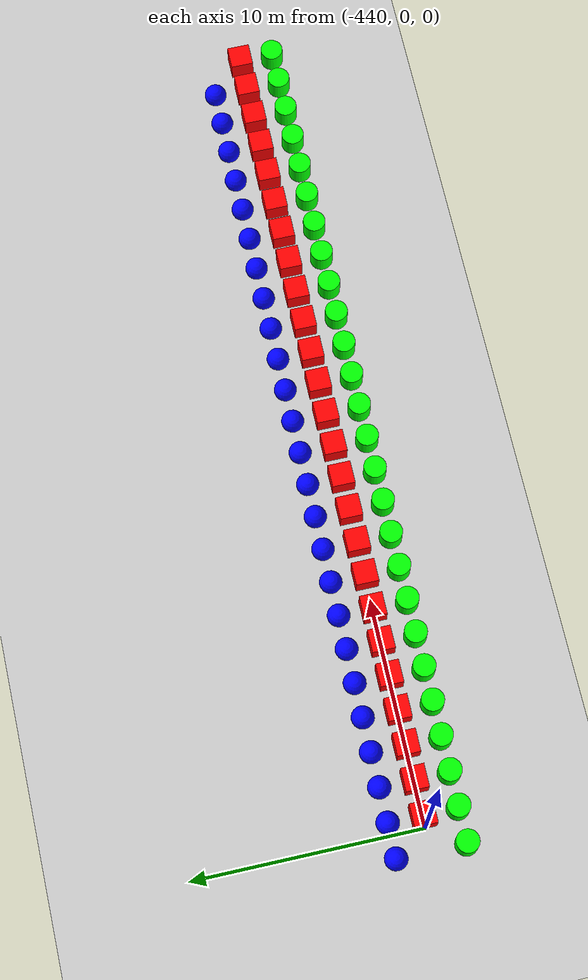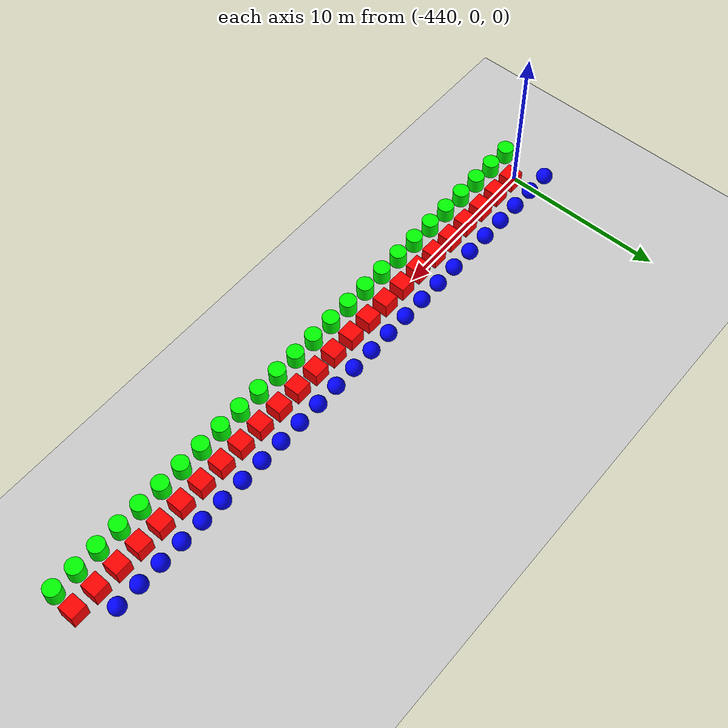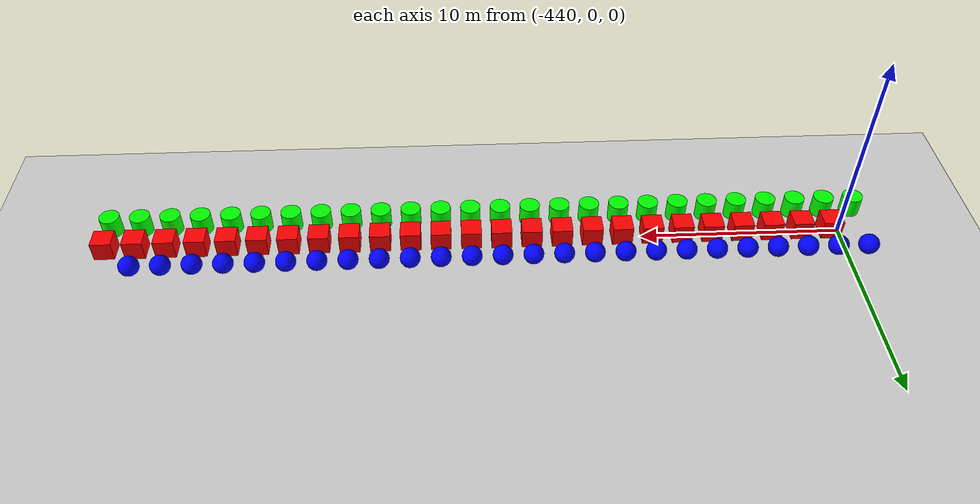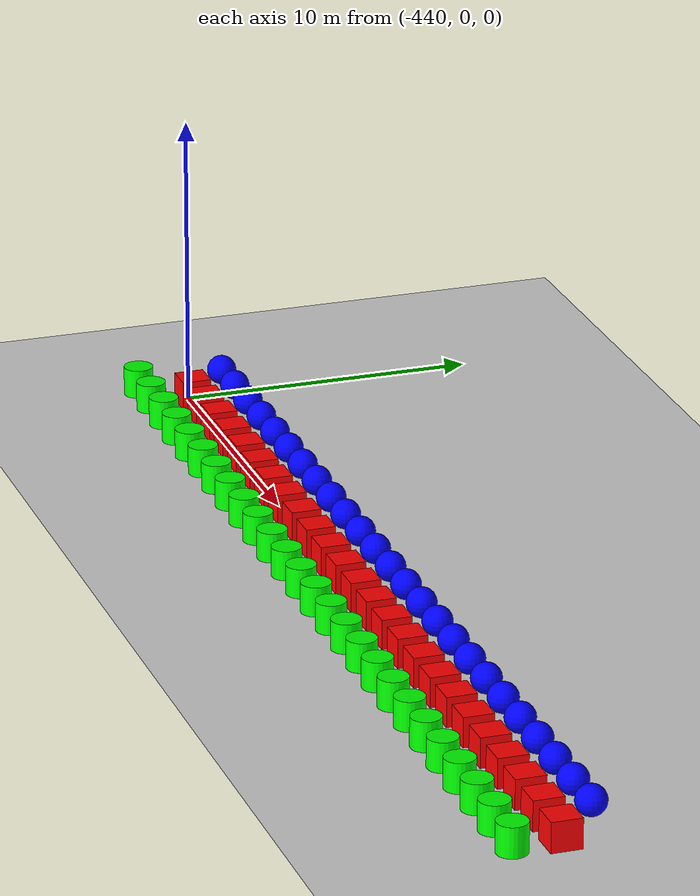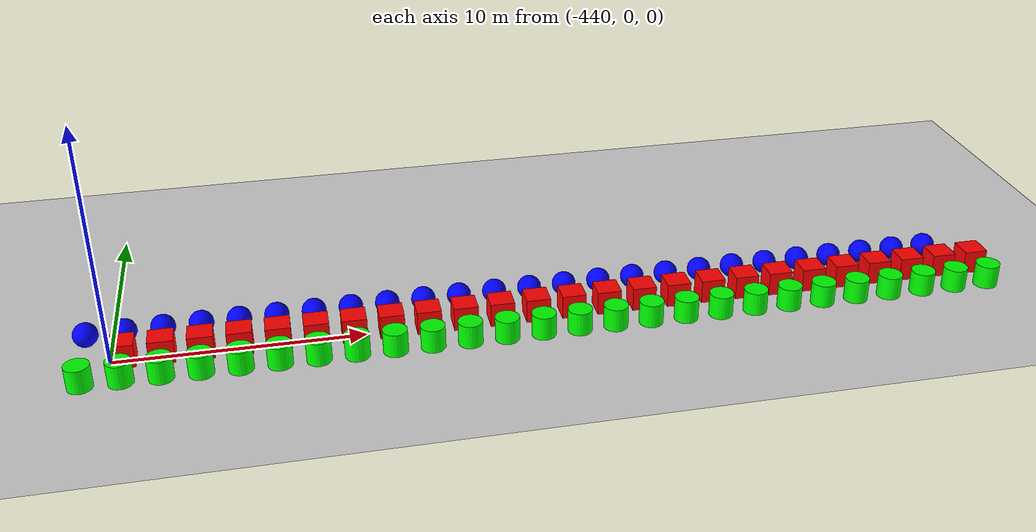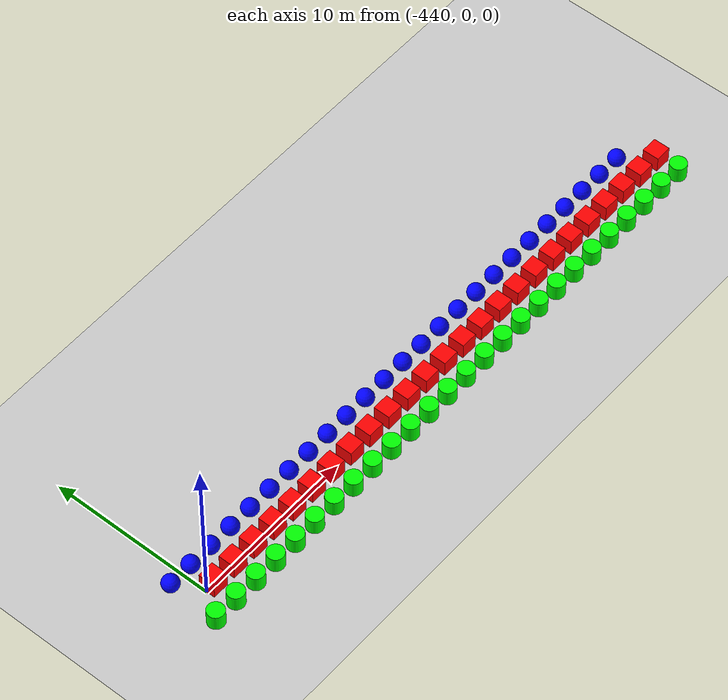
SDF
<sdf version="1.6">
 <world name="shapes">
  <model name="ground_plane">
   <static>true</static>
   <link name="link">
    <collision name="collision">
     <geometry><plane><normal>0 0 1</normal><size>100 100</size></plane></geometry>
    </collision>
    <visual name="visual">
     <geometry><plane><normal>0 0 1</normal><size>100 100</size></plane></geometry>
     <material>
      <ambient>0.8 0.8 0.8 1</ambient>
      <diffuse>0.8 0.8 0.8 1</diffuse>
      <specular>0.8 0.8 0.8 1</specular>
     </material>
    </visual>
   </link>
  </model>
  <model name="cylinder_206">
   <static>false</static>
   <pose>-441.0 -1.5 0.5 0 0 0</pose>
   <link name="cylinder_link">
    <inertial>
     <inertia><ixx>2</ixx><ixy>0</ixy><ixz>0</ixz><iyy>2</iyy><iyz>0</iyz><izz>2</izz></inertia>
     <mass>2.0</mass>
    </inertial>
    <collision name="cylinder_collision">
     <geometry><cylinder><radius>0.5</radius><length>1.0</length></cylinder></geometry>
    </collision>
    <visual name="cylinder_visual">
     <geometry><cylinder><radius>0.5</radius><length>1.0</length></cylinder></geometry>
     <material><ambient>0 1 0 1</ambient><diffuse>0 1 0 1</diffuse><specular>0 1 0 1</specular></material>
    </visual>
   </link>
  </model>
  <model name="sphere_206">
   <static>false</static>
   <pose>-441.0 1.5 0.5 0 0 0</pose>
   <link name="sphere_link">
    <inertial>
     <inertia><ixx>3</ixx><ixy>0</ixy><ixz>0</ixz><iyy>3</iyy><iyz>0</iyz><izz>3</izz></inertia>
     <mass>3.0</mass>
    </inertial>
    <collision name="sphere_collision"><geometry><sphere><radius>0.5</radius></sphere></geometry></collision>
    <visual name="sphere_visual">
     <geometry><sphere><radius>0.5</radius></sphere></geometry>
     <material><ambient>0 0 1 1</ambient><diffuse>0 0 1 1</diffuse><specular>0 0 1 1</specular></material>
    </visual>
   </link>
  </model>
  <model name="box_207">
   <static>false</static>
   <pose>-439.5 0 0.5 0 0 0</pose>
   <link name="box_link">
    <inertial>
     <inertia><ixx>1</ixx><ixy>0</ixy><ixz>0</ixz><iyy>1</iyy><iyz>0</iyz><izz>1</izz></inertia>
     <mass>1.0</mass>
    </inertial>
    <collision name="box_collision"><geometry><box><size>1 1 1</size></box></geometry></collision>
    <visual name="box_visual">
     <geometry><box><size>1 1 1</size></box></geometry>
     <material><ambient>1 0 0 1</ambient><diffuse>1 0 0 1</diffuse><specular>1 0 0 1</specular></material>
    </visual>
   </link>
  </model>
  <model name="cylinder_207">
   <static>false</static>
   <pose>-439.5 -1.5 0.5 0 0 0</pose>
   <link name="cylinder_link">
    <inertial>
     <inertia><ixx>2</ixx><ixy>0</ixy><ixz>0</ixz><iyy>2</iyy><iyz>0</iyz><izz>2</izz></inertia>
     <mass>2.0</mass>
    </inertial>
    <collision name="cylinder_collision">
     <geometry><cylinder><radius>0.5</radius><length>1.0</length></cylinder></geometry>
    </collision>
    <visual name="cylinder_visual">
     <geometry><cylinder><radius>0.5</radius><length>1.0</length></cylinder></geometry>
     <material><ambient>0 1 0 1</ambient><diffuse>0 1 0 1</diffuse><specular>0 1 0 1</specular></material>
    </visual>
   </link>
  </model>
  <model name="sphere_207">
   <static>false</static>
   <pose>-439.5 1.5 0.5 0 0 0</pose>
   <link name="sphere_link">
    <inertial>
     <inertia><ixx>3</ixx><ixy>0</ixy><ixz>0</ixz><iyy>3</iyy><iyz>0</iyz><izz>3</izz></inertia>
     <mass>3.0</mass>
    </inertial>
    <collision name="sphere_collision"><geometry><sphere><radius>0.5</radius></sphere></geometry></collision>
    <visual name="sphere_visual">
     <geometry><sphere><radius>0.5</radius></sphere></geometry>
     <material><ambient>0 0 1 1</ambient><diffuse>0 0 1 1</diffuse><specular>0 0 1 1</specular></material>
    </visual>
   </link>
  </model>
  <model name="box_208">
   <static>false</static>
   <pose>-438.0 0 0.5 0 0 0</pose>
   <link name="box_link">
    <inertial>
     <inertia><ixx>1</ixx><ixy>0</ixy><ixz>0</ixz><iyy>1</iyy><iyz>0</iyz><izz>1</izz></inertia>
     <mass>1.0</mass>
    </inertial>
    <collision name="box_collision"><geometry><box><size>1 1 1</size></box></geometry></collision>
    <visual name="box_visual">
     <geometry><box><size>1 1 1</size></box></geometry>
     <material><ambient>1 0 0 1</ambient><diffuse>1 0 0 1</diffuse><specular>1 0 0 1</specular></material>
    </visual>
   </link>
  </model>
  <model name="cylinder_208">
   <static>false</static>
   <pose>-438.0 -1.5 0.5 0 0 0</pose>
   <link name="cylinder_link">
    <inertial>
     <inertia><ixx>2</ixx><ixy>0</ixy><ixz>0</ixz><iyy>2</iyy><iyz>0</iyz><izz>2</izz></inertia>
     <mass>2.0</mass>
    </inertial>
    <collision name="cylinder_collision">
     <geometry><cylinder><radius>0.5</radius><length>1.0</length></cylinder></geometry>
    </collision>
    <visual name="cylinder_visual">
     <geometry><cylinder><radius>0.5</radius><length>1.0</length></cylinder></geometry>
     <material><ambient>0 1 0 1</ambient><diffuse>0 1 0 1</diffuse><specular>0 1 0 1</specular></material>
    </visual>
   </link>
  </model>
  <model name="sphere_208">
   <static>false</static>
   <pose>-438.0 1.5 0.5 0 0 0</pose>
   <link name="sphere_link">
    <inertial>
     <inertia><ixx>3</ixx><ixy>0</ixy><ixz>0</ixz><iyy>3</iyy><iyz>0</iyz><izz>3</izz></inertia>
     <mass>3.0</mass>
    </inertial>
    <collision name="sphere_collision"><geometry><sphere><radius>0.5</radius></sphere></geometry></collision>
    <visual name="sphere_visual">
     <geometry><sphere><radius>0.5</radius></sphere></geometry>
     <material><ambient>0 0 1 1</ambient><diffuse>0 0 1 1</diffuse><specular>0 0 1 1</specular></material>
    </visual>
   </link>
  </model>
  <model name="box_209">
   <static>false</static>
   <pose>-436.5 0 0.5 0 0 0</pose>
   <link name="box_link">
    <inertial>
     <inertia><ixx>1</ixx><ixy>0</ixy><ixz>0</ixz><iyy>1</iyy><iyz>0</iyz><izz>1</izz></inertia>
     <mass>1.0</mass>
    </inertial>
    <collision name="box_collision"><geometry><box><size>1 1 1</size></box></geometry></collision>
    <visual name="box_visual">
     <geometry><box><size>1 1 1</size></box></geometry>
     <material><ambient>1 0 0 1</ambient><diffuse>1 0 0 1</diffuse><specular>1 0 0 1</specular></material>
    </visual>
   </link>
  </model>
  <model name="cylinder_209">
   <static>false</static>
   <pose>-436.5 -1.5 0.5 0 0 0</pose>
   <link name="cylinder_link">
    <inertial>
     <inertia><ixx>2</ixx><ixy>0</ixy><ixz>0</ixz><iyy>2</iyy><iyz>0</iyz><izz>2</izz></inertia>
     <mass>2.0</mass>
    </inertial>
    <collision name="cylinder_collision">
     <geometry><cylinder><radius>0.5</radius><length>1.0</length></cylinder></geometry>
    </collision>
    <visual name="cylinder_visual">
     <geometry><cylinder><radius>0.5</radius><length>1.0</length></cylinder></geometry>
     <material><ambient>0 1 0 1</ambient><diffuse>0 1 0 1</diffuse><specular>0 1 0 1</specular></material>
    </visual>
   </link>
  </model>
  <model name="sphere_209">
   <static>false</static>
   <pose>-436.5 1.5 0.5 0 0 0</pose>
   <link name="sphere_link">
    <inertial>
     <inertia><ixx>3</ixx><ixy>0</ixy><ixz>0</ixz><iyy>3</iyy><iyz>0</iyz><izz>3</izz></inertia>
     <mass>3.0</mass>
    </inertial>
    <collision name="sphere_collision"><geometry><sphere><radius>0.5</radius></sphere></geometry></collision>
    <visual name="sphere_visual">
     <geometry><sphere><radius>0.5</radius></sphere></geometry>
     <material><ambient>0 0 1 1</ambient><diffuse>0 0 1 1</diffuse><specular>0 0 1 1</specular></material>
    </visual>
   </link>
  </model>
  <model name="box_210">
   <static>false</static>
   <pose>-435.0 0 0.5 0 0 0</pose>
   <link name="box_link">
    <inertial>
     <inertia><ixx>1</ixx><ixy>0</ixy><ixz>0</ixz><iyy>1</iyy><iyz>0</iyz><izz>1</izz></inertia>
     <mass>1.0</mass>
    </inertial>
    <collision name="box_collision"><geometry><box><size>1 1 1</size></box></geometry></collision>
    <visual name="box_visual">
     <geometry><box><size>1 1 1</size></box></geometry>
     <material><ambient>1 0 0 1</ambient><diffuse>1 0 0 1</diffuse><specular>1 0 0 1</specular></material>
    </visual>
   </link>
  </model>
  <model name="cylinder_210">
   <static>false</static>
   <pose>-435.0 -1.5 0.5 0 0 0</pose>
   <link name="cylinder_link">
    <inertial>
     <inertia><ixx>2</ixx><ixy>0</ixy><ixz>0</ixz><iyy>2</iyy><iyz>0</iyz><izz>2</izz></inertia>
     <mass>2.0</mass>
    </inertial>
    <collision name="cylinder_collision">
     <geometry><cylinder><radius>0.5</radius><length>1.0</length></cylinder></geometry>
    </collision>
    <visual name="cylinder_visual">
     <geometry><cylinder><radius>0.5</radius><length>1.0</length></cylinder></geometry>
     <material><ambient>0 1 0 1</ambient><diffuse>0 1 0 1</diffuse><specular>0 1 0 1</specular></material>
    </visual>
   </link>
  </model>
  <model name="sphere_210">
   <static>false</static>
   <pose>-435.0 1.5 0.5 0 0 0</pose>
   <link name="sphere_link">
    <inertial>
     <inertia><ixx>3</ixx><ixy>0</ixy><ixz>0</ixz><iyy>3</iyy><iyz>0</iyz><izz>3</izz></inertia>
     <mass>3.0</mass>
    </inertial>
    <collision name="sphere_collision"><geometry><sphere><radius>0.5</radius></sphere></geometry></collision>
    <visual name="sphere_visual">
     <geometry><sphere><radius>0.5</radius></sphere></geometry>
     <material><ambient>0 0 1 1</ambient><diffuse>0 0 1 1</diffuse><specular>0 0 1 1</specular></material>
    </visual>
   </link>
  </model>
  <model name="box_211">
   <static>false</static>
   <pose>-433.5 0 0.5 0 0 0</pose>
   <link name="box_link">
    <inertial>
     <inertia><ixx>1</ixx><ixy>0</ixy><ixz>0</ixz><iyy>1</iyy><iyz>0</iyz><izz>1</izz></inertia>
     <mass>1.0</mass>
    </inertial>
    <collision name="box_collision"><geometry><box><size>1 1 1</size></box></geometry></collision>
    <visual name="box_visual">
     <geometry><box><size>1 1 1</size></box></geometry>
     <material><ambient>1 0 0 1</ambient><diffuse>1 0 0 1</diffuse><specular>1 0 0 1</specular></material>
    </visual>
   </link>
  </model>
  <model name="cylinder_211">
   <static>false</static>
   <pose>-433.5 -1.5 0.5 0 0 0</pose>
   <link name="cylinder_link">
    <inertial>
     <inertia><ixx>2</ixx><ixy>0</ixy><ixz>0</ixz><iyy>2</iyy><iyz>0</iyz><izz>2</izz></inertia>
     <mass>2.0</mass>
    </inertial>
    <collision name="cylinder_collision">
     <geometry><cylinder><radius>0.5</radius><length>1.0</length></cylinder></geometry>
    </collision>
    <visual name="cylinder_visual">
     <geometry><cylinder><radius>0.5</radius><length>1.0</length></cylinder></geometry>
     <material><ambient>0 1 0 1</ambient><diffuse>0 1 0 1</diffuse><specular>0 1 0 1</specular></material>
    </visual>
   </link>
  </model>
  <model name="sphere_211">
   <static>false</static>
   <pose>-433.5 1.5 0.5 0 0 0</pose>
   <link name="sphere_link">
    <inertial>
     <inertia><ixx>3</ixx><ixy>0</ixy><ixz>0</ixz><iyy>3</iyy><iyz>0</iyz><izz>3</izz></inertia>
     <mass>3.0</mass>
    </inertial>
    <collision name="sphere_collision"><geometry><sphere><radius>0.5</radius></sphere></geometry></collision>
    <visual name="sphere_visual">
     <geometry><sphere><radius>0.5</radius></sphere></geometry>
     <material><ambient>0 0 1 1</ambient><diffuse>0 0 1 1</diffuse><specular>0 0 1 1</specular></material>
    </visual>
   </link>
  </model>
  <model name="box_212">
   <static>false</static>
   <pose>-432.0 0 0.5 0 0 0</pose>
   <link name="box_link">
    <inertial>
     <inertia><ixx>1</ixx><ixy>0</ixy><ixz>0</ixz><iyy>1</iyy><iyz>0</iyz><izz>1</izz></inertia>
     <mass>1.0</mass>
    </inertial>
    <collision name="box_collision"><geometry><box><size>1 1 1</size></box></geometry></collision>
    <visual name="box_visual">
     <geometry><box><size>1 1 1</size></box></geometry>
     <material><ambient>1 0 0 1</ambient><diffuse>1 0 0 1</diffuse><specular>1 0 0 1</specular></material>
    </visual>
   </link>
  </model>
  <model name="cylinder_212">
   <static>false</static>
   <pose>-432.0 -1.5 0.5 0 0 0</pose>
   <link name="cylinder_link">
    <inertial>
     <inertia><ixx>2</ixx><ixy>0</ixy><ixz>0</ixz><iyy>2</iyy><iyz>0</iyz><izz>2</izz></inertia>
     <mass>2.0</mass>
    </inertial>
    <collision name="cylinder_collision">
     <geometry><cylinder><radius>0.5</radius><length>1.0</length></cylinder></geometry>
    </collision>
    <visual name="cylinder_visual">
     <geometry><cylinder><radius>0.5</radius><length>1.0</length></cylinder></geometry>
     <material><ambient>0 1 0 1</ambient><diffuse>0 1 0 1</diffuse><specular>0 1 0 1</specular></material>
    </visual>
   </link>
  </model>
  <model name="sphere_212">
   <static>false</static>
   <pose>-432.0 1.5 0.5 0 0 0</pose>
   <link name="sphere_link">
    <inertial>
     <inertia><ixx>3</ixx><ixy>0</ixy><ixz>0</ixz><iyy>3</iyy><iyz>0</iyz><izz>3</izz></inertia>
     <mass>3.0</mass>
    </inertial>
    <collision name="sphere_collision"><geometry><sphere><radius>0.5</radius></sphere></geometry></collision>
    <visual name="sphere_visual">
     <geometry><sphere><radius>0.5</radius></sphere></geometry>
     <material><ambient>0 0 1 1</ambient><diffuse>0 0 1 1</diffuse><specular>0 0 1 1</specular></material>
    </visual>
   </link>
  </model>
  <model name="box_213">
   <static>false</static>
   <pose>-430.5 0 0.5 0 0 0</pose>
   <link name="box_link">
    <inertial>
     <inertia><ixx>1</ixx><ixy>0</ixy><ixz>0</ixz><iyy>1</iyy><iyz>0</iyz><izz>1</izz></inertia>
     <mass>1.0</mass>
    </inertial>
    <collision name="box_collision"><geometry><box><size>1 1 1</size></box></geometry></collision>
    <visual name="box_visual">
     <geometry><box><size>1 1 1</size></box></geometry>
     <material><ambient>1 0 0 1</ambient><diffuse>1 0 0 1</diffuse><specular>1 0 0 1</specular></material>
    </visual>
   </link>
  </model>
  <model name="cylinder_213">
   <static>false</static>
   <pose>-430.5 -1.5 0.5 0 0 0</pose>
   <link name="cylinder_link">
    <inertial>
     <inertia><ixx>2</ixx><ixy>0</ixy><ixz>0</ixz><iyy>2</iyy><iyz>0</iyz><izz>2</izz></inertia>
     <mass>2.0</mass>
    </inertial>
    <collision name="cylinder_collision">
     <geometry><cylinder><radius>0.5</radius><length>1.0</length></cylinder></geometry>
    </collision>
    <visual name="cylinder_visual">
     <geometry><cylinder><radius>0.5</radius><length>1.0</length></cylinder></geometry>
     <material><ambient>0 1 0 1</ambient><diffuse>0 1 0 1</diffuse><specular>0 1 0 1</specular></material>
    </visual>
   </link>
  </model>
  <model name="sphere_213">
   <static>false</static>
   <pose>-430.5 1.5 0.5 0 0 0</pose>
   <link name="sphere_link">
    <inertial>
     <inertia><ixx>3</ixx><ixy>0</ixy><ixz>0</ixz><iyy>3</iyy><iyz>0</iyz><izz>3</izz></inertia>
     <mass>3.0</mass>
    </inertial>
    <collision name="sphere_collision"><geometry><sphere><radius>0.5</radius></sphere></geometry></collision>
    <visual name="sphere_visual">
     <geometry><sphere><radius>0.5</radius></sphere></geometry>
     <material><ambient>0 0 1 1</ambient><diffuse>0 0 1 1</diffuse><specular>0 0 1 1</specular></material>
    </visual>
   </link>
  </model>
  <model name="box_214">
   <static>false</static>
   <pose>-429.0 0 0.5 0 0 0</pose>
   <link name="box_link">
    <inertial>
     <inertia><ixx>1</ixx><ixy>0</ixy><ixz>0</ixz><iyy>1</iyy><iyz>0</iyz><izz>1</izz></inertia>
     <mass>1.0</mass>
    </inertial>
    <collision name="box_collision"><geometry><box><size>1 1 1</size></box></geometry></collision>
    <visual name="box_visual">
     <geometry><box><size>1 1 1</size></box></geometry>
     <material><ambient>1 0 0 1</ambient><diffuse>1 0 0 1</diffuse><specular>1 0 0 1</specular></material>
    </visual>
   </link>
  </model>
  <model name="cylinder_214">
   <static>false</static>
   <pose>-429.0 -1.5 0.5 0 0 0</pose>
   <link name="cylinder_link">
    <inertial>
     <inertia><ixx>2</ixx><ixy>0</ixy><ixz>0</ixz><iyy>2</iyy><iyz>0</iyz><izz>2</izz></inertia>
     <mass>2.0</mass>
    </inertial>
    <collision name="cylinder_collision">
     <geometry><cylinder><radius>0.5</radius><length>1.0</length></cylinder></geometry>
    </collision>
    <visual name="cylinder_visual">
     <geometry><cylinder><radius>0.5</radius><length>1.0</length></cylinder></geometry>
     <material><ambient>0 1 0 1</ambient><diffuse>0 1 0 1</diffuse><specular>0 1 0 1</specular></material>
    </visual>
   </link>
  </model>
  <model name="sphere_214">
   <static>false</static>
   <pose>-429.0 1.5 0.5 0 0 0</pose>
   <link name="sphere_link">
    <inertial>
     <inertia><ixx>3</ixx><ixy>0</ixy><ixz>0</ixz><iyy>3</iyy><iyz>0</iyz><izz>3</izz></inertia>
     <mass>3.0</mass>
    </inertial>
    <collision name="sphere_collision"><geometry><sphere><radius>0.5</radius></sphere></geometry></collision>
    <visual name="sphere_visual">
     <geometry><sphere><radius>0.5</radius></sphere></geometry>
     <material><ambient>0 0 1 1</ambient><diffuse>0 0 1 1</diffuse><specular>0 0 1 1</specular></material>
    </visual>
   </link>
  </model>
  <model name="box_215">
   <static>false</static>
   <pose>-427.5 0 0.5 0 0 0</pose>
   <link name="box_link">
    <inertial>
     <inertia><ixx>1</ixx><ixy>0</ixy><ixz>0</ixz><iyy>1</iyy><iyz>0</iyz><izz>1</izz></inertia>
     <mass>1.0</mass>
    </inertial>
    <collision name="box_collision"><geometry><box><size>1 1 1</size></box></geometry></collision>
    <visual name="box_visual">
     <geometry><box><size>1 1 1</size></box></geometry>
     <material><ambient>1 0 0 1</ambient><diffuse>1 0 0 1</diffuse><specular>1 0 0 1</specular></material>
    </visual>
   </link>
  </model>
  <model name="cylinder_215">
   <static>false</static>
   <pose>-427.5 -1.5 0.5 0 0 0</pose>
   <link name="cylinder_link">
    <inertial>
     <inertia><ixx>2</ixx><ixy>0</ixy><ixz>0</ixz><iyy>2</iyy><iyz>0</iyz><izz>2</izz></inertia>
     <mass>2.0</mass>
    </inertial>
    <collision name="cylinder_collision">
     <geometry><cylinder><radius>0.5</radius><length>1.0</length></cylinder></geometry>
    </collision>
    <visual name="cylinder_visual">
     <geometry><cylinder><radius>0.5</radius><length>1.0</length></cylinder></geometry>
     <material><ambient>0 1 0 1</ambient><diffuse>0 1 0 1</diffuse><specular>0 1 0 1</specular></material>
    </visual>
   </link>
  </model>
  <model name="sphere_215">
   <static>false</static>
   <pose>-427.5 1.5 0.5 0 0 0</pose>
   <link name="sphere_link">
    <inertial>
     <inertia><ixx>3</ixx><ixy>0</ixy><ixz>0</ixz><iyy>3</iyy><iyz>0</iyz><izz>3</izz></inertia>
     <mass>3.0</mass>
    </inertial>
    <collision name="sphere_collision"><geometry><sphere><radius>0.5</radius></sphere></geometry></collision>
    <visual name="sphere_visual">
     <geometry><sphere><radius>0.5</radius></sphere></geometry>
     <material><ambient>0 0 1 1</ambient><diffuse>0 0 1 1</diffuse><specular>0 0 1 1</specular></material>
    </visual>
   </link>
  </model>
  <model name="box_216">
   <static>false</static>
   <pose>-426.0 0 0.5 0 0 0</pose>
   <link name="box_link">
    <inertial>
     <inertia><ixx>1</ixx><ixy>0</ixy><ixz>0</ixz><iyy>1</iyy><iyz>0</iyz><izz>1</izz></inertia>
     <mass>1.0</mass>
    </inertial>
    <collision name="box_collision"><geometry><box><size>1 1 1</size></box></geometry></collision>
    <visual name="box_visual">
     <geometry><box><size>1 1 1</size></box></geometry>
     <material><ambient>1 0 0 1</ambient><diffuse>1 0 0 1</diffuse><specular>1 0 0 1</specular></material>
    </visual>
   </link>
  </model>
  <model name="cylinder_216">
   <static>false</static>
   <pose>-426.0 -1.5 0.5 0 0 0</pose>
   <link name="cylinder_link">
    <inertial>
     <inertia><ixx>2</ixx><ixy>0</ixy><ixz>0</ixz><iyy>2</iyy><iyz>0</iyz><izz>2</izz></inertia>
     <mass>2.0</mass>
    </inertial>
    <collision name="cylinder_collision">
     <geometry><cylinder><radius>0.5</radius><length>1.0</length></cylinder></geometry>
    </collision>
    <visual name="cylinder_visual">
     <geometry><cylinder><radius>0.5</radius><length>1.0</length></cylinder></geometry>
     <material><ambient>0 1 0 1</ambient><diffuse>0 1 0 1</diffuse><specular>0 1 0 1</specular></material>
    </visual>
   </link>
  </model>
  <model name="sphere_216">
   <static>false</static>
   <pose>-426.0 1.5 0.5 0 0 0</pose>
   <link name="sphere_link">
    <inertial>
     <inertia><ixx>3</ixx><ixy>0</ixy><ixz>0</ixz><iyy>3</iyy><iyz>0</iyz><izz>3</izz></inertia>
     <mass>3.0</mass>
    </inertial>
    <collision name="sphere_collision"><geometry><sphere><radius>0.5</radius></sphere></geometry></collision>
    <visual name="sphere_visual">
     <geometry><sphere><radius>0.5</radius></sphere></geometry>
     <material><ambient>0 0 1 1</ambient><diffuse>0 0 1 1</diffuse><specular>0 0 1 1</specular></material>
    </visual>
   </link>
  </model>
  <model name="box_217">
   <static>false</static>
   <pose>-424.5 0 0.5 0 0 0</pose>
   <link name="box_link">
    <inertial>
     <inertia><ixx>1</ixx><ixy>0</ixy><ixz>0</ixz><iyy>1</iyy><iyz>0</iyz><izz>1</izz></inertia>
     <mass>1.0</mass>
    </inertial>
    <collision name="box_collision"><geometry><box><size>1 1 1</size></box></geometry></collision>
    <visual name="box_visual">
     <geometry><box><size>1 1 1</size></box></geometry>
     <material><ambient>1 0 0 1</ambient><diffuse>1 0 0 1</diffuse><specular>1 0 0 1</specular></material>
    </visual>
   </link>
  </model>
  <model name="cylinder_217">
   <static>false</static>
   <pose>-424.5 -1.5 0.5 0 0 0</pose>
   <link name="cylinder_link">
    <inertial>
     <inertia><ixx>2</ixx><ixy>0</ixy><ixz>0</ixz><iyy>2</iyy><iyz>0</iyz><izz>2</izz></inertia>
     <mass>2.0</mass>
    </inertial>
    <collision name="cylinder_collision">
     <geometry><cylinder><radius>0.5</radius><length>1.0</length></cylinder></geometry>
    </collision>
    <visual name="cylinder_visual">
     <geometry><cylinder><radius>0.5</radius><length>1.0</length></cylinder></geometry>
     <material><ambient>0 1 0 1</ambient><diffuse>0 1 0 1</diffuse><specular>0 1 0 1</specular></material>
    </visual>
   </link>
  </model>
  <model name="sphere_217">
   <static>false</static>
   <pose>-424.5 1.5 0.5 0 0 0</pose>
   <link name="sphere_link">
    <inertial>
     <inertia><ixx>3</ixx><ixy>0</ixy><ixz>0</ixz><iyy>3</iyy><iyz>0</iyz><izz>3</izz></inertia>
     <mass>3.0</mass>
    </inertial>
    <collision name="sphere_collision"><geometry><sphere><radius>0.5</radius></sphere></geometry></collision>
    <visual name="sphere_visual">
     <geometry><sphere><radius>0.5</radius></sphere></geometry>
     <material><ambient>0 0 1 1</ambient><diffuse>0 0 1 1</diffuse><specular>0 0 1 1</specular></material>
    </visual>
   </link>
  </model>
  <model name="box_218">
   <static>false</static>
   <pose>-423.0 0 0.5 0 0 0</pose>
   <link name="box_link">
    <inertial>
     <inertia><ixx>1</ixx><ixy>0</ixy><ixz>0</ixz><iyy>1</iyy><iyz>0</iyz><izz>1</izz></inertia>
     <mass>1.0</mass>
    </inertial>
    <collision name="box_collision"><geometry><box><size>1 1 1</size></box></geometry></collision>
    <visual name="box_visual">
     <geometry><box><size>1 1 1</size></box></geometry>
     <material><ambient>1 0 0 1</ambient><diffuse>1 0 0 1</diffuse><specular>1 0 0 1</specular></material>
    </visual>
   </link>
  </model>
  <model name="cylinder_218">
   <static>false</static>
   <pose>-423.0 -1.5 0.5 0 0 0</pose>
   <link name="cylinder_link">
    <inertial>
     <inertia><ixx>2</ixx><ixy>0</ixy><ixz>0</ixz><iyy>2</iyy><iyz>0</iyz><izz>2</izz></inertia>
     <mass>2.0</mass>
    </inertial>
    <collision name="cylinder_collision">
     <geometry><cylinder><radius>0.5</radius><length>1.0</length></cylinder></geometry>
    </collision>
    <visual name="cylinder_visual">
     <geometry><cylinder><radius>0.5</radius><length>1.0</length></cylinder></geometry>
     <material><ambient>0 1 0 1</ambient><diffuse>0 1 0 1</diffuse><specular>0 1 0 1</specular></material>
    </visual>
   </link>
  </model>
  <model name="sphere_218">
   <static>false</static>
   <pose>-423.0 1.5 0.5 0 0 0</pose>
   <link name="sphere_link">
    <inertial>
     <inertia><ixx>3</ixx><ixy>0</ixy><ixz>0</ixz><iyy>3</iyy><iyz>0</iyz><izz>3</izz></inertia>
     <mass>3.0</mass>
    </inertial>
    <collision name="sphere_collision"><geometry><sphere><radius>0.5</radius></sphere></geometry></collision>
    <visual name="sphere_visual">
     <geometry><sphere><radius>0.5</radius></sphere></geometry>
     <material><ambient>0 0 1 1</ambient><diffuse>0 0 1 1</diffuse><specular>0 0 1 1</specular></material>
    </visual>
   </link>
  </model>
  <model name="box_219">
   <static>false</static>
   <pose>-421.5 0 0.5 0 0 0</pose>
   <link name="box_link">
    <inertial>
     <inertia><ixx>1</ixx><ixy>0</ixy><ixz>0</ixz><iyy>1</iyy><iyz>0</iyz><izz>1</izz></inertia>
     <mass>1.0</mass>
    </inertial>
    <collision name="box_collision"><geometry><box><size>1 1 1</size></box></geometry></collision>
    <visual name="box_visual">
     <geometry><box><size>1 1 1</size></box></geometry>
     <material><ambient>1 0 0 1</ambient><diffuse>1 0 0 1</diffuse><specular>1 0 0 1</specular></material>
    </visual>
   </link>
  </model>
  <model name="cylinder_219">
   <static>false</static>
   <pose>-421.5 -1.5 0.5 0 0 0</pose>
   <link name="cylinder_link">
    <inertial>
     <inertia><ixx>2</ixx><ixy>0</ixy><ixz>0</ixz><iyy>2</iyy><iyz>0</iyz><izz>2</izz></inertia>
     <mass>2.0</mass>
    </inertial>
    <collision name="cylinder_collision">
     <geometry><cylinder><radius>0.5</radius><length>1.0</length></cylinder></geometry>
    </collision>
    <visual name="cylinder_visual">
     <geometry><cylinder><radius>0.5</radius><length>1.0</length></cylinder></geometry>
     <material><ambient>0 1 0 1</ambient><diffuse>0 1 0 1</diffuse><specular>0 1 0 1</specular></material>
    </visual>
   </link>
  </model>
  <model name="sphere_219">
   <static>false</static>
   <pose>-421.5 1.5 0.5 0 0 0</pose>
   <link name="sphere_link">
    <inertial>
     <inertia><ixx>3</ixx><ixy>0</ixy><ixz>0</ixz><iyy>3</iyy><iyz>0</iyz><izz>3</izz></inertia>
     <mass>3.0</mass>
    </inertial>
    <collision name="sphere_collision"><geometry><sphere><radius>0.5</radius></sphere></geometry></collision>
    <visual name="sphere_visual">
     <geometry><sphere><radius>0.5</radius></sphere></geometry>
     <material><ambient>0 0 1 1</ambient><diffuse>0 0 1 1</diffuse><specular>0 0 1 1</specular></material>
    </visual>
   </link>
  </model>
  <model name="box_220">
   <static>false</static>
   <pose>-420.0 0 0.5 0 0 0</pose>
   <link name="box_link">
    <inertial>
     <inertia><ixx>1</ixx><ixy>0</ixy><ixz>0</ixz><iyy>1</iyy><iyz>0</iyz><izz>1</izz></inertia>
     <mass>1.0</mass>
    </inertial>
    <collision name="box_collision"><geometry><box><size>1 1 1</size></box></geometry></collision>
    <visual name="box_visual">
     <geometry><box><size>1 1 1</size></box></geometry>
     <material><ambient>1 0 0 1</ambient><diffuse>1 0 0 1</diffuse><specular>1 0 0 1</specular></material>
    </visual>
   </link>
  </model>
  <model name="cylinder_220">
   <static>false</static>
   <pose>-420.0 -1.5 0.5 0 0 0</pose>
   <link name="cylinder_link">
    <inertial>
     <inertia><ixx>2</ixx><ixy>0</ixy><ixz>0</ixz><iyy>2</iyy><iyz>0</iyz><izz>2</izz></inertia>
     <mass>2.0</mass>
    </inertial>
    <collision name="cylinder_collision">
     <geometry><cylinder><radius>0.5</radius><length>1.0</length></cylinder></geometry>
    </collision>
    <visual name="cylinder_visual">
     <geometry><cylinder><radius>0.5</radius><length>1.0</length></cylinder></geometry>
     <material><ambient>0 1 0 1</ambient><diffuse>0 1 0 1</diffuse><specular>0 1 0 1</specular></material>
    </visual>
   </link>
  </model>
  <model name="sphere_220">
   <static>false</static>
   <pose>-420.0 1.5 0.5 0 0 0</pose>
   <link name="sphere_link">
    <inertial>
     <inertia><ixx>3</ixx><ixy>0</ixy><ixz>0</ixz><iyy>3</iyy><iyz>0</iyz><izz>3</izz></inertia>
     <mass>3.0</mass>
    </inertial>
    <collision name="sphere_collision"><geometry><sphere><radius>0.5</radius></sphere></geometry></collision>
    <visual name="sphere_visual">
     <geometry><sphere><radius>0.5</radius></sphere></geometry>
     <material><ambient>0 0 1 1</ambient><diffuse>0 0 1 1</diffuse><specular>0 0 1 1</specular></material>
    </visual>
   </link>
  </model>
  <model name="box_221">
   <static>false</static>
   <pose>-418.5 0 0.5 0 0 0</pose>
   <link name="box_link">
    <inertial>
     <inertia><ixx>1</ixx><ixy>0</ixy><ixz>0</ixz><iyy>1</iyy><iyz>0</iyz><izz>1</izz></inertia>
     <mass>1.0</mass>
    </inertial>
    <collision name="box_collision"><geometry><box><size>1 1 1</size></box></geometry></collision>
    <visual name="box_visual">
     <geometry><box><size>1 1 1</size></box></geometry>
     <material><ambient>1 0 0 1</ambient><diffuse>1 0 0 1</diffuse><specular>1 0 0 1</specular></material>
    </visual>
   </link>
  </model>
  <model name="cylinder_221">
   <static>false</static>
   <pose>-418.5 -1.5 0.5 0 0 0</pose>
   <link name="cylinder_link">
    <inertial>
     <inertia><ixx>2</ixx><ixy>0</ixy><ixz>0</ixz><iyy>2</iyy><iyz>0</iyz><izz>2</izz></inertia>
     <mass>2.0</mass>
    </inertial>
    <collision name="cylinder_collision">
     <geometry><cylinder><radius>0.5</radius><length>1.0</length></cylinder></geometry>
    </collision>
    <visual name="cylinder_visual">
     <geometry><cylinder><radius>0.5</radius><length>1.0</length></cylinder></geometry>
     <material><ambient>0 1 0 1</ambient><diffuse>0 1 0 1</diffuse><specular>0 1 0 1</specular></material>
    </visual>
   </link>
  </model>
  <model name="sphere_221">
   <static>false</static>
   <pose>-418.5 1.5 0.5 0 0 0</pose>
   <link name="sphere_link">
    <inertial>
     <inertia><ixx>3</ixx><ixy>0</ixy><ixz>0</ixz><iyy>3</iyy><iyz>0</iyz><izz>3</izz></inertia>
     <mass>3.0</mass>
    </inertial>
    <collision name="sphere_collision"><geometry><sphere><radius>0.5</radius></sphere></geometry></collision>
    <visual name="sphere_visual">
     <geometry><sphere><radius>0.5</radius></sphere></geometry>
     <material><ambient>0 0 1 1</ambient><diffuse>0 0 1 1</diffuse><specular>0 0 1 1</specular></material>
    </visual>
   </link>
  </model>
  <model name="box_222">
   <static>false</static>
   <pose>-417.0 0 0.5 0 0 0</pose>
   <link name="box_link">
    <inertial>
     <inertia><ixx>1</ixx><ixy>0</ixy><ixz>0</ixz><iyy>1</iyy><iyz>0</iyz><izz>1</izz></inertia>
     <mass>1.0</mass>
    </inertial>
    <collision name="box_collision"><geometry><box><size>1 1 1</size></box></geometry></collision>
    <visual name="box_visual">
     <geometry><box><size>1 1 1</size></box></geometry>
     <material><ambient>1 0 0 1</ambient><diffuse>1 0 0 1</diffuse><specular>1 0 0 1</specular></material>
    </visual>
   </link>
  </model>
  <model name="cylinder_222">
   <static>false</static>
   <pose>-417.0 -1.5 0.5 0 0 0</pose>
   <link name="cylinder_link">
    <inertial>
     <inertia><ixx>2</ixx><ixy>0</ixy><ixz>0</ixz><iyy>2</iyy><iyz>0</iyz><izz>2</izz></inertia>
     <mass>2.0</mass>
    </inertial>
    <collision name="cylinder_collision">
     <geometry><cylinder><radius>0.5</radius><length>1.0</length></cylinder></geometry>
    </collision>
    <visual name="cylinder_visual">
     <geometry><cylinder><radius>0.5</radius><length>1.0</length></cylinder></geometry>
     <material><ambient>0 1 0 1</ambient><diffuse>0 1 0 1</diffuse><specular>0 1 0 1</specular></material>
    </visual>
   </link>
  </model>
  <model name="sphere_222">
   <static>false</static>
   <pose>-417.0 1.5 0.5 0 0 0</pose>
   <link name="sphere_link">
    <inertial>
     <inertia><ixx>3</ixx><ixy>0</ixy><ixz>0</ixz><iyy>3</iyy><iyz>0</iyz><izz>3</izz></inertia>
     <mass>3.0</mass>
    </inertial>
    <collision name="sphere_collision"><geometry><sphere><radius>0.5</radius></sphere></geometry></collision>
    <visual name="sphere_visual">
     <geometry><sphere><radius>0.5</radius></sphere></geometry>
     <material><ambient>0 0 1 1</ambient><diffuse>0 0 1 1</diffuse><specular>0 0 1 1</specular></material>
    </visual>
   </link>
  </model>
  <model name="box_223">
   <static>false</static>
   <pose>-415.5 0 0.5 0 0 0</pose>
   <link name="box_link">
    <inertial>
     <inertia><ixx>1</ixx><ixy>0</ixy><ixz>0</ixz><iyy>1</iyy><iyz>0</iyz><izz>1</izz></inertia>
     <mass>1.0</mass>
    </inertial>
    <collision name="box_collision"><geometry><box><size>1 1 1</size></box></geometry></collision>
    <visual name="box_visual">
     <geometry><box><size>1 1 1</size></box></geometry>
     <material><ambient>1 0 0 1</ambient><diffuse>1 0 0 1</diffuse><specular>1 0 0 1</specular></material>
    </visual>
   </link>
  </model>
  <model name="cylinder_223">
   <static>false</static>
   <pose>-415.5 -1.5 0.5 0 0 0</pose>
   <link name="cylinder_link">
    <inertial>
     <inertia><ixx>2</ixx><ixy>0</ixy><ixz>0</ixz><iyy>2</iyy><iyz>0</iyz><izz>2</izz></inertia>
     <mass>2.0</mass>
    </inertial>
    <collision name="cylinder_collision">
     <geometry><cylinder><radius>0.5</radius><length>1.0</length></cylinder></geometry>
    </collision>
    <visual name="cylinder_visual">
     <geometry><cylinder><radius>0.5</radius><length>1.0</length></cylinder></geometry>
     <material><ambient>0 1 0 1</ambient><diffuse>0 1 0 1</diffuse><specular>0 1 0 1</specular></material>
    </visual>
   </link>
  </model>
  <model name="sphere_223">
   <static>false</static>
   <pose>-415.5 1.5 0.5 0 0 0</pose>
   <link name="sphere_link">
    <inertial>
     <inertia><ixx>3</ixx><ixy>0</ixy><ixz>0</ixz><iyy>3</iyy><iyz>0</iyz><izz>3</izz></inertia>
     <mass>3.0</mass>
    </inertial>
    <collision name="sphere_collision"><geometry><sphere><radius>0.5</radius></sphere></geometry></collision>
    <visual name="sphere_visual">
     <geometry><sphere><radius>0.5</radius></sphere></geometry>
     <material><ambient>0 0 1 1</ambient><diffuse>0 0 1 1</diffuse><specular>0 0 1 1</specular></material>
    </visual>
   </link>
  </model>
  <model name="box_224">
   <static>false</static>
   <pose>-414.0 0 0.5 0 0 0</pose>
   <link name="box_link">
    <inertial>
     <inertia><ixx>1</ixx><ixy>0</ixy><ixz>0</ixz><iyy>1</iyy><iyz>0</iyz><izz>1</izz></inertia>
     <mass>1.0</mass>
    </inertial>
    <collision name="box_collision"><geometry><box><size>1 1 1</size></box></geometry></collision>
    <visual name="box_visual">
     <geometry><box><size>1 1 1</size></box></geometry>
     <material><ambient>1 0 0 1</ambient><diffuse>1 0 0 1</diffuse><specular>1 0 0 1</specular></material>
    </visual>
   </link>
  </model>
  <model name="cylinder_224">
   <static>false</static>
   <pose>-414.0 -1.5 0.5 0 0 0</pose>
   <link name="cylinder_link">
    <inertial>
     <inertia><ixx>2</ixx><ixy>0</ixy><ixz>0</ixz><iyy>2</iyy><iyz>0</iyz><izz>2</izz></inertia>
     <mass>2.0</mass>
    </inertial>
    <collision name="cylinder_collision">
     <geometry><cylinder><radius>0.5</radius><length>1.0</length></cylinder></geometry>
    </collision>
    <visual name="cylinder_visual">
     <geometry><cylinder><radius>0.5</radius><length>1.0</length></cylinder></geometry>
     <material><ambient>0 1 0 1</ambient><diffuse>0 1 0 1</diffuse><specular>0 1 0 1</specular></material>
    </visual>
   </link>
  </model>
  <model name="sphere_224">
   <static>false</static>
   <pose>-414.0 1.5 0.5 0 0 0</pose>
   <link name="sphere_link">
    <inertial>
     <inertia><ixx>3</ixx><ixy>0</ixy><ixz>0</ixz><iyy>3</iyy><iyz>0</iyz><izz>3</izz></inertia>
     <mass>3.0</mass>
    </inertial>
    <collision name="sphere_collision"><geometry><sphere><radius>0.5</radius></sphere></geometry></collision>
    <visual name="sphere_visual">
     <geometry><sphere><radius>0.5</radius></sphere></geometry>
     <material><ambient>0 0 1 1</ambient><diffuse>0 0 1 1</diffuse><specular>0 0 1 1</specular></material>
    </visual>
   </link>
  </model>
  <model name="box_225">
   <static>false</static>
   <pose>-412.5 0 0.5 0 0 0</pose>
   <link name="box_link">
    <inertial>
     <inertia><ixx>1</ixx><ixy>0</ixy><ixz>0</ixz><iyy>1</iyy><iyz>0</iyz><izz>1</izz></inertia>
     <mass>1.0</mass>
    </inertial>
    <collision name="box_collision"><geometry><box><size>1 1 1</size></box></geometry></collision>
    <visual name="box_visual">
     <geometry><box><size>1 1 1</size></box></geometry>
     <material><ambient>1 0 0 1</ambient><diffuse>1 0 0 1</diffuse><specular>1 0 0 1</specular></material>
    </visual>
   </link>
  </model>
  <model name="cylinder_225">
   <static>false</static>
   <pose>-412.5 -1.5 0.5 0 0 0</pose>
   <link name="cylinder_link">
    <inertial>
     <inertia><ixx>2</ixx><ixy>0</ixy><ixz>0</ixz><iyy>2</iyy><iyz>0</iyz><izz>2</izz></inertia>
     <mass>2.0</mass>
    </inertial>
    <collision name="cylinder_collision">
     <geometry><cylinder><radius>0.5</radius><length>1.0</length></cylinder></geometry>
    </collision>
    <visual name="cylinder_visual">
     <geometry><cylinder><radius>0.5</radius><length>1.0</length></cylinder></geometry>
     <material><ambient>0 1 0 1</ambient><diffuse>0 1 0 1</diffuse><specular>0 1 0 1</specular></material>
    </visual>
   </link>
  </model>
  <model name="sphere_225">
   <static>false</static>
   <pose>-412.5 1.5 0.5 0 0 0</pose>
   <link name="sphere_link">
    <inertial>
     <inertia><ixx>3</ixx><ixy>0</ixy><ixz>0</ixz><iyy>3</iyy><iyz>0</iyz><izz>3</izz></inertia>
     <mass>3.0</mass>
    </inertial>
    <collision name="sphere_collision"><geometry><sphere><radius>0.5</radius></sphere></geometry></collision>
    <visual name="sphere_visual">
     <geometry><sphere><radius>0.5</radius></sphere></geometry>
     <material><ambient>0 0 1 1</ambient><diffuse>0 0 1 1</diffuse><specular>0 0 1 1</specular></material>
    </visual>
   </link>
  </model>
  <model name="box_226">
   <static>false</static>
   <pose>-411.0 0 0.5 0 0 0</pose>
   <link name="box_link">
    <inertial>
     <inertia><ixx>1</ixx><ixy>0</ixy><ixz>0</ixz><iyy>1</iyy><iyz>0</iyz><izz>1</izz></inertia>
     <mass>1.0</mass>
    </inertial>
    <collision name="box_collision"><geometry><box><size>1 1 1</size></box></geometry></collision>
    <visual name="box_visual">
     <geometry><box><size>1 1 1</size></box></geometry>
     <material><ambient>1 0 0 1</ambient><diffuse>1 0 0 1</diffuse><specular>1 0 0 1</specular></material>
    </visual>
   </link>
  </model>
  <model name="cylinder_226">
   <static>false</static>
   <pose>-411.0 -1.5 0.5 0 0 0</pose>
   <link name="cylinder_link">
    <inertial>
     <inertia><ixx>2</ixx><ixy>0</ixy><ixz>0</ixz><iyy>2</iyy><iyz>0</iyz><izz>2</izz></inertia>
     <mass>2.0</mass>
    </inertial>
    <collision name="cylinder_collision">
     <geometry><cylinder><radius>0.5</radius><length>1.0</length></cylinder></geometry>
    </collision>
    <visual name="cylinder_visual">
     <geometry><cylinder><radius>0.5</radius><length>1.0</length></cylinder></geometry>
     <material><ambient>0 1 0 1</ambient><diffuse>0 1 0 1</diffuse><specular>0 1 0 1</specular></material>
    </visual>
   </link>
  </model>
  <model name="sphere_226">
   <static>false</static>
   <pose>-411.0 1.5 0.5 0 0 0</pose>
   <link name="sphere_link">
    <inertial>
     <inertia><ixx>3</ixx><ixy>0</ixy><ixz>0</ixz><iyy>3</iyy><iyz>0</iyz><izz>3</izz></inertia>
     <mass>3.0</mass>
    </inertial>
    <collision name="sphere_collision"><geometry><sphere><radius>0.5</radius></sphere></geometry></collision>
    <visual name="sphere_visual">
     <geometry><sphere><radius>0.5</radius></sphere></geometry>
     <material><ambient>0 0 1 1</ambient><diffuse>0 0 1 1</diffuse><specular>0 0 1 1</specular></material>
    </visual>
   </link>
  </model>
  <model name="box_227">
   <static>false</static>
   <pose>-409.5 0 0.5 0 0 0</pose>
   <link name="box_link">
    <inertial>
     <inertia><ixx>1</ixx><ixy>0</ixy><ixz>0</ixz><iyy>1</iyy><iyz>0</iyz><izz>1</izz></inertia>
     <mass>1.0</mass>
    </inertial>
    <collision name="box_collision"><geometry><box><size>1 1 1</size></box></geometry></collision>
    <visual name="box_visual">
     <geometry><box><size>1 1 1</size></box></geometry>
     <material><ambient>1 0 0 1</ambient><diffuse>1 0 0 1</diffuse><specular>1 0 0 1</specular></material>
    </visual>
   </link>
  </model>
  <model name="cylinder_227">
   <static>false</static>
   <pose>-409.5 -1.5 0.5 0 0 0</pose>
   <link name="cylinder_link">
    <inertial>
     <inertia><ixx>2</ixx><ixy>0</ixy><ixz>0</ixz><iyy>2</iyy><iyz>0</iyz><izz>2</izz></inertia>
     <mass>2.0</mass>
    </inertial>
    <collision name="cylinder_collision">
     <geometry><cylinder><radius>0.5</radius><length>1.0</length></cylinder></geometry>
    </collision>
    <visual name="cylinder_visual">
     <geometry><cylinder><radius>0.5</radius><length>1.0</length></cylinder></geometry>
     <material><ambient>0 1 0 1</ambient><diffuse>0 1 0 1</diffuse><specular>0 1 0 1</specular></material>
    </visual>
   </link>
  </model>
  <model name="sphere_227">
   <static>false</static>
   <pose>-409.5 1.5 0.5 0 0 0</pose>
   <link name="sphere_link">
    <inertial>
     <inertia><ixx>3</ixx><ixy>0</ixy><ixz>0</ixz><iyy>3</iyy><iyz>0</iyz><izz>3</izz></inertia>
     <mass>3.0</mass>
    </inertial>
    <collision name="sphere_collision"><geometry><sphere><radius>0.5</radius></sphere></geometry></collision>
    <visual name="sphere_visual">
     <geometry><sphere><radius>0.5</radius></sphere></geometry>
     <material><ambient>0 0 1 1</ambient><diffuse>0 0 1 1</diffuse><specular>0 0 1 1</specular></material>
    </visual>
   </link>
  </model>
  <model name="box_228">
   <static>false</static>
   <pose>-408.0 0 0.5 0 0 0</pose>
   <link name="box_link">
    <inertial>
     <inertia><ixx>1</ixx><ixy>0</ixy><ixz>0</ixz><iyy>1</iyy><iyz>0</iyz><izz>1</izz></inertia>
     <mass>1.0</mass>
    </inertial>
    <collision name="box_collision"><geometry><box><size>1 1 1</size></box></geometry></collision>
    <visual name="box_visual">
     <geometry><box><size>1 1 1</size></box></geometry>
     <material><ambient>1 0 0 1</ambient><diffuse>1 0 0 1</diffuse><specular>1 0 0 1</specular></material>
    </visual>
   </link>
  </model>
  <model name="cylinder_228">
   <static>false</static>
   <pose>-408.0 -1.5 0.5 0 0 0</pose>
   <link name="cylinder_link">
    <inertial>
     <inertia><ixx>2</ixx><ixy>0</ixy><ixz>0</ixz><iyy>2</iyy><iyz>0</iyz><izz>2</izz></inertia>
     <mass>2.0</mass>
    </inertial>
    <collision name="cylinder_collision">
     <geometry><cylinder><radius>0.5</radius><length>1.0</length></cylinder></geometry>
    </collision>
    <visual name="cylinder_visual">
     <geometry><cylinder><radius>0.5</radius><length>1.0</length></cylinder></geometry>
     <material><ambient>0 1 0 1</ambient><diffuse>0 1 0 1</diffuse><specular>0 1 0 1</specular></material>
    </visual>
   </link>
  </model>
  <model name="sphere_228">
   <static>false</static>
   <pose>-408.0 1.5 0.5 0 0 0</pose>
   <link name="sphere_link">
    <inertial>
     <inertia><ixx>3</ixx><ixy>0</ixy><ixz>0</ixz><iyy>3</iyy><iyz>0</iyz><izz>3</izz></inertia>
     <mass>3.0</mass>
    </inertial>
    <collision name="sphere_collision"><geometry><sphere><radius>0.5</radius></sphere></geometry></collision>
    <visual name="sphere_visual">
     <geometry><sphere><radius>0.5</radius></sphere></geometry>
     <material><ambient>0 0 1 1</ambient><diffuse>0 0 1 1</diffuse><specular>0 0 1 1</specular></material>
    </visual>
   </link>
  </model>
  <model name="box_229">
   <static>false</static>
   <pose>-406.5 0 0.5 0 0 0</pose>
   <link name="box_link">
    <inertial>
     <inertia><ixx>1</ixx><ixy>0</ixy><ixz>0</ixz><iyy>1</iyy><iyz>0</iyz><izz>1</izz></inertia>
     <mass>1.0</mass>
    </inertial>
    <collision name="box_collision"><geometry><box><size>1 1 1</size></box></geometry></collision>
    <visual name="box_visual">
     <geometry><box><size>1 1 1</size></box></geometry>
     <material><ambient>1 0 0 1</ambient><diffuse>1 0 0 1</diffuse><specular>1 0 0 1</specular></material>
    </visual>
   </link>
  </model>
  <model name="cylinder_229">
   <static>false</static>
   <pose>-406.5 -1.5 0.5 0 0 0</pose>
   <link name="cylinder_link">
    <inertial>
     <inertia><ixx>2</ixx><ixy>0</ixy><ixz>0</ixz><iyy>2</iyy><iyz>0</iyz><izz>2</izz></inertia>
     <mass>2.0</mass>
    </inertial>
    <collision name="cylinder_collision">
     <geometry><cylinder><radius>0.5</radius><length>1.0</length></cylinder></geometry>
    </collision>
    <visual name="cylinder_visual">
     <geometry><cylinder><radius>0.5</radius><length>1.0</length></cylinder></geometry>
     <material><ambient>0 1 0 1</ambient><diffuse>0 1 0 1</diffuse><specular>0 1 0 1</specular></material>
    </visual>
   </link>
  </model>
  <model name="sphere_229">
   <static>false</static>
   <pose>-406.5 1.5 0.5 0 0 0</pose>
   <link name="sphere_link">
    <inertial>
     <inertia><ixx>3</ixx><ixy>0</ixy><ixz>0</ixz><iyy>3</iyy><iyz>0</iyz><izz>3</izz></inertia>
     <mass>3.0</mass>
    </inertial>
    <collision name="sphere_collision"><geometry><sphere><radius>0.5</radius></sphere></geometry></collision>
    <visual name="sphere_visual">
     <geometry><sphere><radius>0.5</radius></sphere></geometry>
     <material><ambient>0 0 1 1</ambient><diffuse>0 0 1 1</diffuse><specular>0 0 1 1</specular></material>
    </visual>
   </link>
  </model>
  <model name="box_230">
   <static>false</static>
   <pose>-405.0 0 0.5 0 0 0</pose>
   <link name="box_link">
    <inertial>
     <inertia><ixx>1</ixx><ixy>0</ixy><ixz>0</ixz><iyy>1</iyy><iyz>0</iyz><izz>1</izz></inertia>
     <mass>1.0</mass>
    </inertial>
    <collision name="box_collision"><geometry><box><size>1 1 1</size></box></geometry></collision>
    <visual name="box_visual">
     <geometry><box><size>1 1 1</size></box></geometry>
     <material><ambient>1 0 0 1</ambient><diffuse>1 0 0 1</diffuse><specular>1 0 0 1</specular></material>
    </visual>
   </link>
  </model>
  <model name="cylinder_230">
   <static>false</static>
   <pose>-405.0 -1.5 0.5 0 0 0</pose>
   <link name="cylinder_link">
    <inertial>
     <inertia><ixx>2</ixx><ixy>0</ixy><ixz>0</ixz><iyy>2</iyy><iyz>0</iyz><izz>2</izz></inertia>
     <mass>2.0</mass>
    </inertial>
    <collision name="cylinder_collision">
     <geometry><cylinder><radius>0.5</radius><length>1.0</length></cylinder></geometry>
    </collision>
    <visual name="cylinder_visual">
     <geometry><cylinder><radius>0.5</radius><length>1.0</length></cylinder></geometry>
     <material><ambient>0 1 0 1</ambient><diffuse>0 1 0 1</diffuse><specular>0 1 0 1</specular></material>
    </visual>
   </link>
  </model>
  <model name="sphere_230">
   <static>false</static>
   <pose>-405.0 1.5 0.5 0 0 0</pose>
   <link name="sphere_link">
    <inertial>
     <inertia><ixx>3</ixx><ixy>0</ixy><ixz>0</ixz><iyy>3</iyy><iyz>0</iyz><izz>3</izz></inertia>
     <mass>3.0</mass>
    </inertial>
    <collision name="sphere_collision"><geometry><sphere><radius>0.5</radius></sphere></geometry></collision>
    <visual name="sphere_visual">
     <geometry><sphere><radius>0.5</radius></sphere></geometry>
     <material><ambient>0 0 1 1</ambient><diffuse>0 0 1 1</diffuse><specular>0 0 1 1</specular></material>
    </visual>
   </link>
  </model>
  <model name="box_231">
   <static>false</static>
   <pose>-403.5 0 0.5 0 0 0</pose>
   <link name="box_link">
    <inertial>
     <inertia><ixx>1</ixx><ixy>0</ixy><ixz>0</ixz><iyy>1</iyy><iyz>0</iyz><izz>1</izz></inertia>
     <mass>1.0</mass>
    </inertial>
    <collision name="box_collision"><geometry><box><size>1 1 1</size></box></geometry></collision>
    <visual name="box_visual">
     <geometry><box><size>1 1 1</size></box></geometry>
     <material><ambient>1 0 0 1</ambient><diffuse>1 0 0 1</diffuse><specular>1 0 0 1</specular></material>
    </visual>
   </link>
  </model>
  <model name="cylinder_231">
   <static>false</static>
   <pose>-403.5 -1.5 0.5 0 0 0</pose>
   <link name="cylinder_link">
    <inertial>
     <inertia><ixx>2</ixx><ixy>0</ixy><ixz>0</ixz><iyy>2</iyy><iyz>0</iyz><izz>2</izz></inertia>
     <mass>2.0</mass>
    </inertial>
    <collision name="cylinder_collision">
     <geometry><cylinder><radius>0.5</radius><length>1.0</length></cylinder></geometry>
    </collision>
    <visual name="cylinder_visual">
     <geometry><cylinder><radius>0.5</radius><length>1.0</length></cylinder></geometry>
     <material><ambient>0 1 0 1</ambient><diffuse>0 1 0 1</diffuse><specular>0 1 0 1</specular></material>
    </visual>
   </link>
  </model>
 </world>
</sdf>
